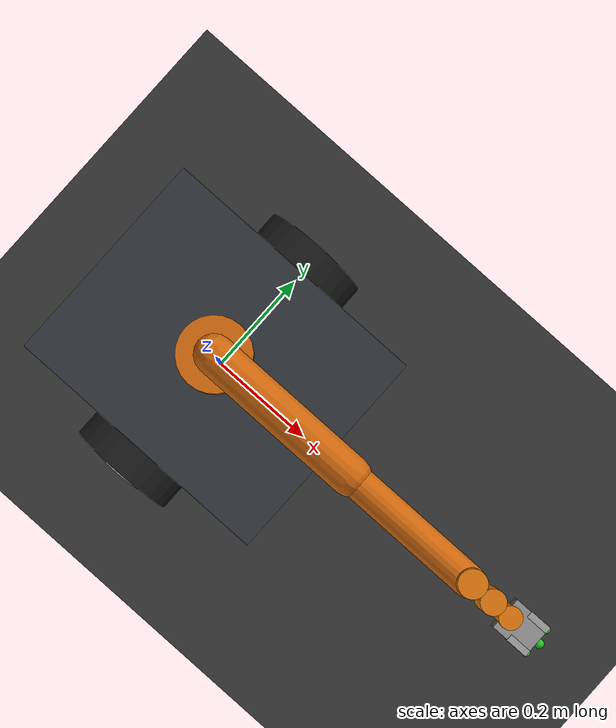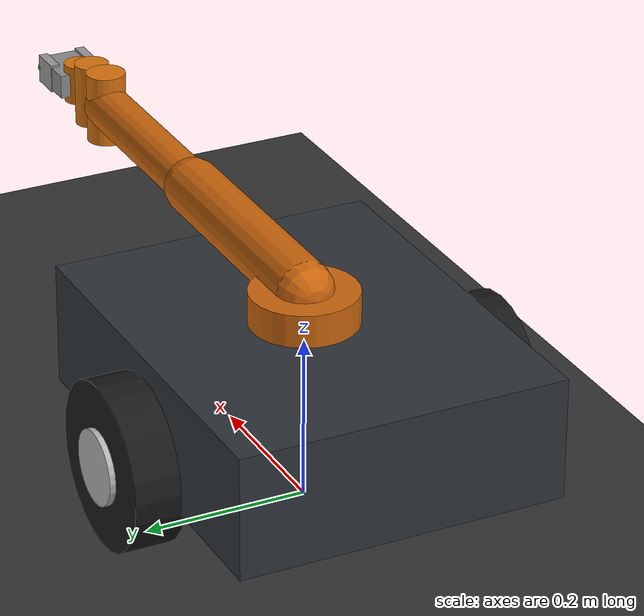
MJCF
<mujoco model="autorobo_v1">

  <!-- ── compiler ───────────────────────────────────────────────────────── -->
  <compiler angle="radian" autolimits="true"/>

  <!-- ── offscreen framebuffer — must be >= any Renderer height used ───── -->
  <visual>
    <global offwidth="1280" offheight="1280"/>
  </visual>

  <!-- ── physics options ───────────────────────────────────────────────── -->
  <option timestep="0.002" gravity="0 0 -9.81" integrator="RK4"/>

  <!-- ── defaults (reduces repetition, easier to tune per class) ───────── -->
  <default>
    <default class="chassis">
      <geom condim="3" friction="0.8 0.1 0.1" rgba="0.18 0.20 0.22 1"/>
    </default>
    <default class="wheel">
      <joint damping="0.5" armature="0.001" frictionloss="0.05"/>
      <geom condim="6" friction="1.5 0.05 0.10" rgba="0.10 0.10 0.10 1"/>
    </default>
    <default class="arm">
      <joint damping="2.0" armature="0.04" frictionloss="0.2"/>
      <geom condim="3" friction="0.5 0.1 0.1" rgba="0.80 0.40 0.05 1"/>
    </default>
    <default class="wrist">
      <joint damping="0.8" armature="0.008" frictionloss="0.05"/>
      <geom condim="3" friction="0.5 0.1 0.1" rgba="0.85 0.45 0.05 1"/>
    </default>
    <default class="gripper">
      <joint damping="5.0" armature="0.001" frictionloss="0.1"/>
      <geom condim="4" friction="2.0 0.5 0.5" rgba="0.60 0.60 0.60 1"/>
    </default>
  </default>

  <!-- ── assets ────────────────────────────────────────────────────────── -->
  <asset>
    <texture name="grid_tex" type="2d" builtin="checker" width="512" height="512"
             rgb1="0.15 0.15 0.15" rgb2="0.25 0.25 0.25"/>
    <material name="floor_mat" texture="grid_tex" texrepeat="8 8" reflectance="0.05"/>
  </asset>

  <!-- ══════════════════════════════════════════════════════════════════════
       WORLD BODY
       ══════════════════════════════════════════════════════════════════════ -->
  <worldbody>

    <!-- Lighting -->
    <light name="sun"  pos="0 0 5" dir="0 0 -1" diffuse="0.8 0.8 0.8" castshadow="true"/>
    <light name="fill" pos="4 4 3" dir="-1 -1 -1" diffuse="0.3 0.3 0.3" castshadow="false"/>

    <!-- Floor (only present for standalone testing; world builder provides its own) -->
    <geom name="floor" type="plane" size="6 6 0.1" material="floor_mat" condim="3"/>

    <!-- ══════════════════ MOBILE BASE ════════════════════════════════════ -->
    <body name="base" pos="0 0 0.15">
      <freejoint name="root"/>

      <!-- Chassis -->
      <geom name="chassis" type="box" size="0.25 0.20 0.075"
            mass="8.0" class="chassis"/>

      <!-- Front ball casters: fixed low-friction spheres — no rotating joint needed -->
      <geom name="caster_fl" type="sphere" size="0.030"
            pos=" 0.20  0.10 -0.12" mass="0.05" friction="0.01 0.005 0.005"/>
      <geom name="caster_fr" type="sphere" size="0.030"
            pos=" 0.20 -0.10 -0.12" mass="0.05" friction="0.01 0.005 0.005"/>

      <!-- IMU site at chassis top-centre (used for gyro / accel / quat sensors) -->
      <site name="imu_site" pos="0 0 0.075" size="0.010" rgba="0.1 0.5 0.9 1"/>

      <site name="lidar_site" pos="0 0 0.120" size="0.012" rgba="1.0 0.5 0.0 1"/>

      <camera name="rgbd_cam"
              pos="0.26 0 0.085"
              xyaxes="0 -1 0  0 0 1"
              fovy="58"/>

      <!-- Corresponding visualisation site for the camera optical centre -->
      <site name="rgbd_cam_site" pos="0.26 0 0.085" size="0.008" rgba="0.0 0.8 0.8 1"/>

      <!-- ── Left drive wheel ── -->
      <body name="wheel_left" pos="0 0.225 -0.05">
        <joint name="wheel_left_joint" type="hinge" axis="0 1 0" class="wheel"/>
        <geom  name="wheel_left_geom"  type="cylinder" size="0.100 0.030"
               euler="1.5708 0 0" mass="0.50" class="wheel"/>
        <!-- hub disc -->
        <geom  name="wheel_left_hub"   type="cylinder" size="0.045 0.005"
               pos="0 0.032 0" euler="1.5708 0 0" mass="0.01"
               rgba="0.70 0.70 0.70 1"/>
      </body>

      <!-- ── Right drive wheel ── -->
      <body name="wheel_right" pos="0 -0.225 -0.05">
        <joint name="wheel_right_joint" type="hinge" axis="0 1 0" class="wheel"/>
        <geom  name="wheel_right_geom"  type="cylinder" size="0.100 0.030"
               euler="1.5708 0 0" mass="0.50" class="wheel"/>
        <!-- hub disc -->
        <geom  name="wheel_right_hub"   type="cylinder" size="0.045 0.005"
               pos="0 -0.032 0" euler="1.5708 0 0" mass="0.01"
               rgba="0.70 0.70 0.70 1"/>
      </body>

      <!-- JOINT 1 — Shoulder pan (rotation around vertical Z) -->
      <body name="shoulder_pan_link" pos="0 0 0.075">
        <joint name="joint1" type="hinge" axis="0 0 1"
               range="-3.14159 3.14159" class="arm"
               damping="5.0" armature="0.10" frictionloss="0.5"/>
        <geom name="shoulder_pan_geom" type="cylinder" size="0.065 0.040"
              mass="0.80" class="arm"/>

        <!-- JOINT 2 — Shoulder lift (tilt arm forward/back around Y) -->
        <body name="shoulder_lift_link" pos="0 0 0.040">
          <joint name="joint2" type="hinge" axis="0 1 0"
                 range="-1.5708 3.14159" class="arm"
                 damping="5.0" armature="0.10" frictionloss="0.5"/>
          <!-- Upper arm: 300 mm capsule along +X when joint2 = 0 -->
          <geom name="upper_arm_geom" type="capsule"
                fromto="0 0 0  0.30 0 0" size="0.035"
                mass="1.50" class="arm"/>

          <!-- JOINT 3 — Elbow (bend around Y) -->
          <body name="elbow_link" pos="0.30 0 0">
            <joint name="joint3" type="hinge" axis="0 1 0"
                   range="-3.14159 3.14159" class="arm"
                   damping="3.0" armature="0.05" frictionloss="0.2"/>
            <!-- Forearm: 260 mm capsule along +X -->
            <geom name="forearm_geom" type="capsule"
                  fromto="0 0 0  0.26 0 0" size="0.028"
                  mass="1.00" class="arm"/>

            <!-- JOINT 4 — Wrist 1 (tilt around Y) -->
            <body name="wrist_1_link" pos="0.26 0 0">
              <joint name="joint4" type="hinge" axis="0 1 0"
                     range="-3.14159 3.14159" class="wrist"/>
              <geom name="wrist_1_geom" type="cylinder" size="0.025 0.045"
                    mass="0.25" class="wrist"/>

              <!-- JOINT 5 — Wrist 2 (rotate around Z) -->
              <body name="wrist_2_link" pos="0.045 0 0">
                <joint name="joint5" type="hinge" axis="0 0 1"
                       range="-3.14159 3.14159" class="wrist"/>
                <geom name="wrist_2_geom" type="cylinder" size="0.022 0.040"
                      mass="0.20" class="wrist"/>

                <!-- JOINT 6 — Wrist 3 / tool roll (rotate around X) -->
                <body name="wrist_3_link" pos="0.040 0 0">
                  <joint name="joint6" type="hinge" axis="1 0 0"
                         range="-3.14159 3.14159" class="wrist"
                         damping="0.5" armature="0.002"/>
                  <geom name="wrist_3_geom" type="cylinder" size="0.020 0.025"
                        mass="0.15" class="wrist"/>

                  <!-- Force-torque sensor site (between wrist and gripper) -->
                  <site name="ft_site" pos="0.025 0 0" size="0.008"
                        rgba="0.1 0.5 0.9 1"/>

                  <body name="gripper_base" pos="0.025 0 0">
                    <geom name="gripper_palm" type="box" size="0.035 0.030 0.015"
                          mass="0.15" rgba="0.55 0.55 0.55 1"/>

                    <!-- Left finger: slides outward (+Y) to open -->
                    <body name="finger_left" pos="0.015 0.025 0">
                      <joint name="finger_left_joint" type="slide" axis="0 1 0"
                             range="0 0.040" class="gripper"/>
                      <geom name="finger_left_body" type="box"
                            size="0.020 0.006 0.018"
                            mass="0.04" class="gripper"/>
                      <!-- High-friction rubber tip -->
                      <geom name="tip_left" type="sphere" pos="0.020 0 0"
                            size="0.007" mass="0.005"
                            rgba="0.15 0.75 0.15 1" friction="3.0 1.0 1.0"/>
                      <site name="touch_left_site"  pos="0.020 0 0" size="0.007"/>
                    </body>

                    <!-- Right finger: slides outward (-Y) to open -->
                    <body name="finger_right" pos="0.015 -0.025 0">
                      <joint name="finger_right_joint" type="slide" axis="0 -1 0"
                             range="0 0.040" class="gripper"/>
                      <geom name="finger_right_body" type="box"
                            size="0.020 0.006 0.018"
                            mass="0.04" class="gripper"/>
                      <geom name="tip_right" type="sphere" pos="0.020 0 0"
                            size="0.007" mass="0.005"
                            rgba="0.15 0.75 0.15 1" friction="3.0 1.0 1.0"/>
                      <site name="touch_right_site" pos="0.020 0 0" size="0.007"/>
                    </body>

                    <!-- Tool Centre Point: midpoint between closed fingertips -->
                    <site name="ee_site" pos="0.042 0 0" size="0.008"
                          rgba="0.15 0.75 0.15 1"/>

                    <camera name="wrist_cam"
                            pos="-0.01 0 0.030"
                            xyaxes="0 -1 0  0 0 1"
                            fovy="69"/>
                  </body>

                </body>
              </body>
            </body>
          </body>
        </body>
      </body>
      <!-- ═══════════════════ END ARM ══════════════════════════════════════ -->

    </body>
    <!-- ════════════════════ END BASE ════════════════════════════════════ -->

  </worldbody>

  <!-- ══════════════════════════════════════════════════════════════════════
       ACTUATORS  (nu = 9)
       ══════════════════════════════════════════════════════════════════════ -->
  <actuator>
    <!-- Differential drive — velocity control (ctrl units: rad/s at wheel joint)  -->
    <!-- ctrlrange ±8 rad/s → ±0.80 m/s linear, ±3.56 rad/s angular (wheelbase=0.45m) -->
    <velocity name="drive_left"  joint="wheel_left_joint"  kv="25" gear="8"
              ctrlrange="-8 8" forcerange="-40 40"/>
    <velocity name="drive_right" joint="wheel_right_joint" kv="25" gear="8"
              ctrlrange="-8 8" forcerange="-40 40"/>

    <!-- Arm — position control; kp decreases toward tip (lighter distal links)   -->
    <!-- forcerange mirrors UR5 torque specs: 150/150/100/30/30/15 N·m             -->
    <position name="arm_j1" joint="joint1" kp="400" ctrlrange="-3.14159 3.14159" forcerange="-150 150"/>
    <position name="arm_j2" joint="joint2" kp="400" ctrlrange="-1.5708  3.14159" forcerange="-150 150"/>
    <position name="arm_j3" joint="joint3" kp="250" ctrlrange="-3.14159 3.14159" forcerange="-100 100"/>
    <position name="arm_j4" joint="joint4" kp="80"  ctrlrange="-3.14159 3.14159" forcerange="-30   30"/>
    <position name="arm_j5" joint="joint5" kp="80"  ctrlrange="-3.14159 3.14159" forcerange="-30   30"/>
    <position name="arm_j6" joint="joint6" kp="40"  ctrlrange="-3.14159 3.14159" forcerange="-15   15"/>

    <!-- Gripper — 50 N max fingertip force (≈ typical research gripper spec)     -->
    <position name="gripper" joint="finger_left_joint" kp="300" ctrlrange="0 0.040" forcerange="-50 50"/>
  </actuator>

  <!-- ══════════════════════════════════════════════════════════════════════
       SENSORS  (22 objects · 48 float outputs)
       ══════════════════════════════════════════════════════════════════════ -->
  <sensor>
    <!-- IMU (mounted at chassis top-centre) -->
    <gyro          name="imu_gyro"   site="imu_site"  noise="0.002"/>
    <accelerometer name="imu_accel"  site="imu_site"  noise="0.010"/>
    <framequat     name="imu_quat"   objtype="site" objname="imu_site"/>

    <!-- Base velocity in world frame -->
    <framelinvel name="base_linvel"  objtype="body" objname="base"/>
    <frameangvel name="base_angvel"  objtype="body" objname="base"/>

    <!-- Arm joint positions (radians) -->
    <jointpos name="q1" joint="joint1"/>
    <jointpos name="q2" joint="joint2"/>
    <jointpos name="q3" joint="joint3"/>
    <jointpos name="q4" joint="joint4"/>
    <jointpos name="q5" joint="joint5"/>
    <jointpos name="q6" joint="joint6"/>

    <!-- Arm joint velocities (rad/s) -->
    <jointvel name="dq1" joint="joint1"/>
    <jointvel name="dq2" joint="joint2"/>
    <jointvel name="dq3" joint="joint3"/>
    <jointvel name="dq4" joint="joint4"/>
    <jointvel name="dq5" joint="joint5"/>
    <jointvel name="dq6" joint="joint6"/>

    <!-- Wrist force-torque (6-axis) -->
    <force  name="wrist_force"  site="ft_site" noise="0.5"/>
    <torque name="wrist_torque" site="ft_site" noise="0.05"/>

    <!-- Gripper state -->
    <jointpos name="finger_l" joint="finger_left_joint"/>
    <jointpos name="finger_r" joint="finger_right_joint"/>

    <!-- Binary touch signals on fingertips (non-zero = contact) -->
    <touch name="touch_left"  site="touch_left_site"/>
    <touch name="touch_right" site="touch_right_site"/>

    <!-- End-effector pose and velocity in world frame -->
    <framepos  name="ee_pos"    objtype="site" objname="ee_site"/>
    <framequat name="ee_quat"   objtype="site" objname="ee_site"/>
    <framelinvel name="ee_linvel" objtype="site" objname="ee_site"/>
  </sensor>

  <!-- ══════════════════════════════════════════════════════════════════════
       EQUALITY CONSTRAINTS
       ══════════════════════════════════════════════════════════════════════ -->
  <equality>
    <!-- Keep both gripper fingers symmetric: finger_right = finger_left -->
    <joint name="gripper_coupling"
           joint1="finger_left_joint" joint2="finger_right_joint"
           polycoef="0 1 0 0 0"/>
  </equality>

  <keyframe>
    <!--
      home: arm straight up (joint2 = π/2), elbow/wrist neutral, gripper closed.
      Safe transport pose — no horizontal reach, minimal collision risk.
    -->
    <!--
      home: arm straight UP — safe transport pose, no horizontal reach.
      joint2 = −π/2 → upper arm points along +Z (upward).
    -->
    <key name="home"
         qpos="0 0 0.15  1 0 0 0  0 0  0 -1.5708 0 0 0 0  0 0"
         ctrl="0 0  0 -1.5708 0 0 0 0  0"/>

    <!--
      ready: arm reaching forward-down toward desk height (~0.40 m).
      joint2 = −π/4 → upper arm at 45° above horizontal
      joint3 = +π/3 → elbow bends forearm forward-down
    -->
    <key name="ready"
         qpos="0 0 0.15  1 0 0 0  0 0  0 -0.7854 1.0472 0 0 0  0 0"
         ctrl="0 0  0 -0.7854 1.0472 0 0 0  0"/>

    <!--
      grasp_open: ready pose with gripper fully open (118 mm gap).
    -->
    <key name="grasp_open"
         qpos="0 0 0.15  1 0 0 0  0 0  0 -0.7854 1.0472 0 0 0  0.04 0.04"
         ctrl="0 0  0 -0.7854 1.0472 0 0 0  0.04"/>
  </keyframe>

</mujoco>
